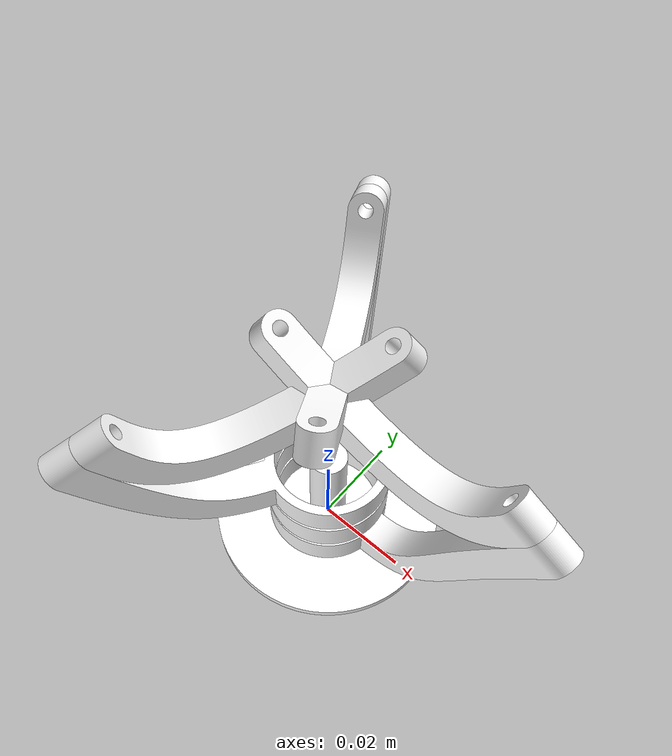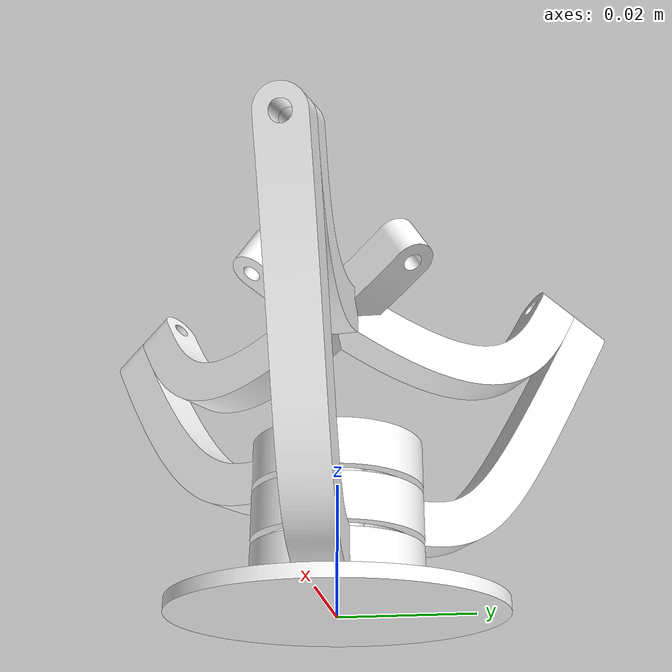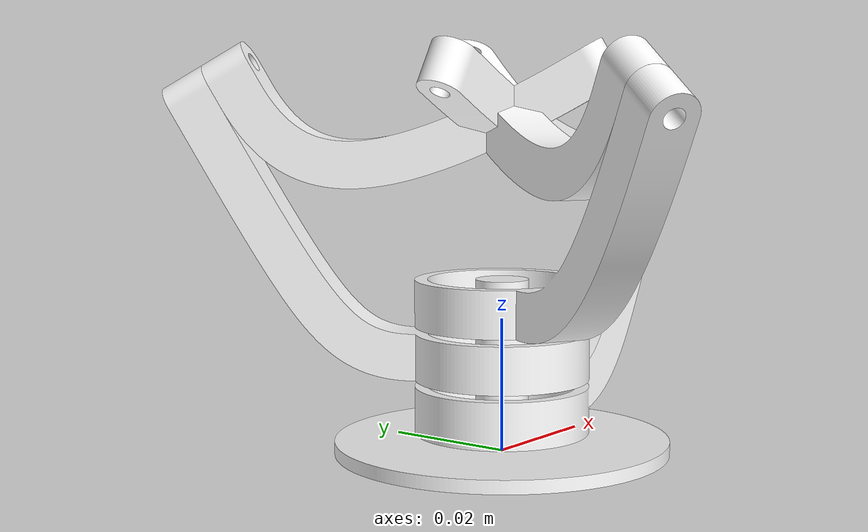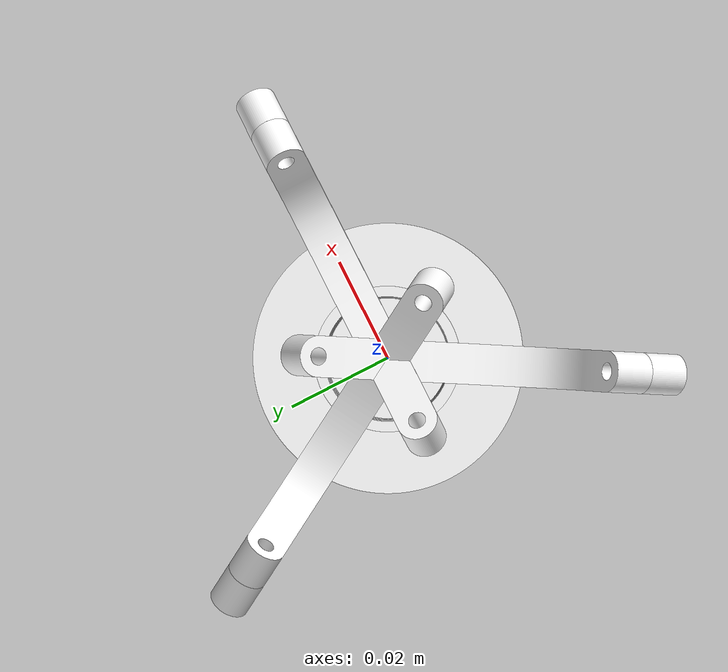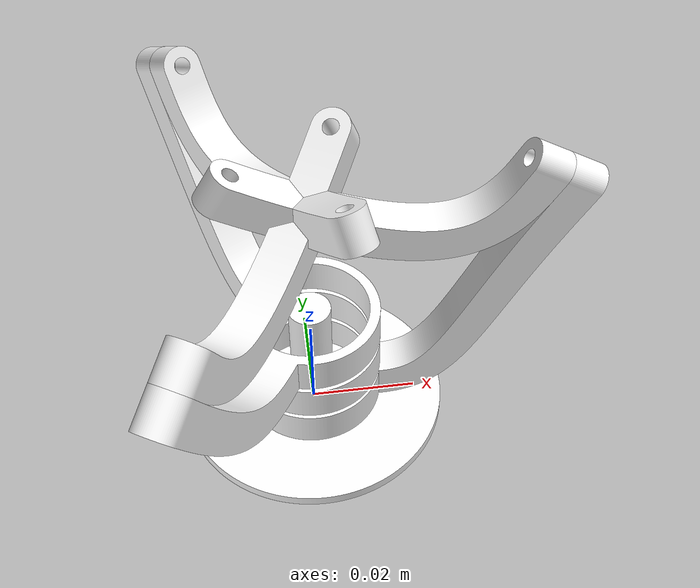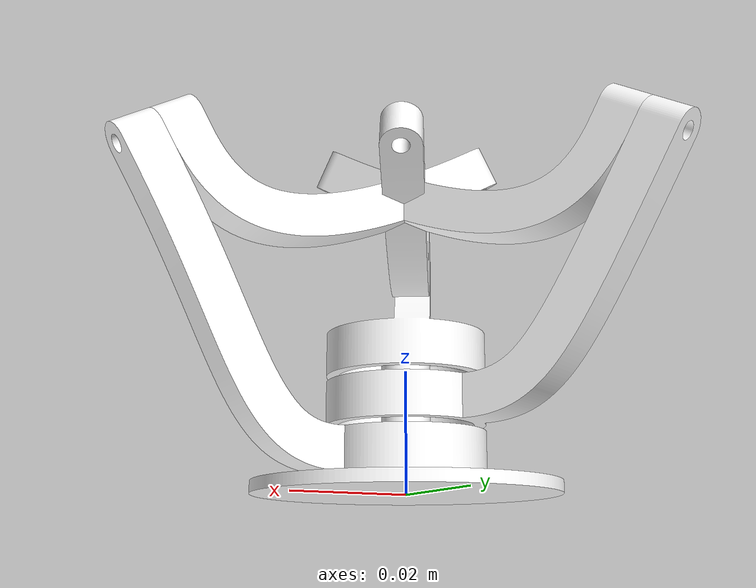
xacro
<?xml version="1.0"?>
<robot xmlns:xacro="http://www.ros.org/wiki/xacro"  name="robot">

    <xacro:include filename="$(find spm_robot)/description/robot_core.xacro" />

	<!-- ROS2_CONTROL -->

	<ros2_control name="SPMSystem" type="system">
		<hardware>
			<plugin>mock_components/GenericSystem</plugin>
		</hardware>
		<joint name="first_arm_joint">
			<command_interface name="position"/>
			<state_interface name="position"/>
			<state_interface name="velocity"/>
		</joint>
		<joint name="second_arm_joint">
			<command_interface name="position"/>
			<state_interface name="position"/>
			<state_interface name="velocity"/>
		</joint>
		<joint name="third_arm_joint">
			<command_interface name="position"/>
			<state_interface name="position"/>
			<state_interface name="velocity"/>
		</joint>
	</ros2_control>

</robot>

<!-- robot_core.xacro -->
<robot xmlns:xacro="http://www.ros.org/wiki/xacro">

	<!-- White -->
	<material name="white">
		<color rgba="1 1 1 1"/>
	</material>

	<!-- Black -->
	<material name="black">
		<color rgba="0 0 0 1"/>
	</material>

	<!-- BASE_LINK -->

	<link name="base_link">
		<visual>
			<geometry>
				<mesh filename="package://spm_robot/description/meshes/SPM_Base.stl"/>
			</geometry>
			<material name="white"/>
		</visual>
		<collision>
			<geometry>
				<mesh filename="package://spm_robot/description/meshes/SPM_Base.stl"/>
			</geometry>
		</collision>
		<inertial>
			<mass value="0.0055"/>
			<inertia ixx="8.83e-7" ixy="0.0" ixz="0.0"
			         iyy="8.83e-7" iyz="0.0"
			         izz="1.317e-6"/>
		</inertial>
	</link>

	<!-- FIRST_ARM -->

	<joint name="first_arm_joint" type="continuous">
		<parent link="base_link"/>
		<child link="first_arm"/>
		<origin xyz="0 0 0.003" rpy="0 0 0"/>
		<axis xyz="0 0 1"/>
	</joint>

	<link name="first_arm">
		<visual>
			<geometry>
				<mesh filename="package://spm_robot/description/meshes/SPM_arm_1.stl"/>
			</geometry>
			<material name="white"/>
		</visual>
		<collision>
			<geometry>
				<mesh filename="package://spm_robot/description/meshes/SPM_arm_1.stl"/>
			</geometry>
		</collision>
		<inertial>
			<mass value="0.004245"/>
			<inertia ixx="1.182e-6" ixy="0.0" ixz="-9.68e-7"
			         iyy="2.266e-6" iyz="0.0"
			         izz="1.265e-6"/>
		</inertial>
	</link>

	<joint name="first_arm_upper_joint" type="continuous">
		<parent link="first_arm"/>
		<child link="first_arm_upper"/>
		<origin xyz="0.0433013 0 0.05150" rpy="0 -1.0472 0"/>
		<axis xyz="0 0 1"/>
	</joint>

	<link name="first_arm_upper">
		<visual>
			<origin rpy="0 0 3.141592"/>
			<geometry>
				<mesh filename="package://spm_robot/description/meshes/SPM_upper_arm.stl"/>
			</geometry>
			<material name="white"/>
		</visual>
		<collision>
			<origin rpy="0 0 3.141592"/>
			<geometry>
				<mesh filename="package://spm_robot/description/meshes/SPM_upper_arm.stl"/>
			</geometry>
		</collision>
		<inertial>
			<mass value="0.00341"/>
			<inertia ixx="8.64e-7" ixy="0.0" ixz="-3.61e-7"
			         iyy="1.098e-6" iyz="0.0"
			         izz="2.62e-7"/>
		</inertial>
	</link>

	<!-- SECOND_ARM -->

	<joint name="second_arm_joint" type="continuous">
		<parent link="base_link"/>
		<child link="second_arm"/>
		<origin xyz="0 0 0.011" rpy="0 0 2.0944"/>
		<axis xyz="0 0 1"/>
	</joint>

	<link name="second_arm">
		<visual>
			<geometry>
				<mesh filename="package://spm_robot/description/meshes/SPM_arm_2.stl"/>
			</geometry>
			<material name="white"/>
		</visual>
		<collision>
			<geometry>
				<mesh filename="package://spm_robot/description/meshes/SPM_arm_2.stl"/>
			</geometry>
		</collision>
		<inertial>
			<mass value="0.003916"/>
			<inertia ixx="7.75e-7" ixy="0.0" ixz="-7.51e-7"
			         iyy="1.835e-6" iyz="0.0"
			         izz="1.239e-6"/>
		</inertial>
	</link>

	<joint name="second_arm_upper_joint" type="continuous">
		<parent link="second_arm"/>
		<child link="second_arm_upper"/>
		<origin xyz="0.0433013 0 0.04350" rpy="0 -1.0472 0"/>
		<axis xyz="0 0 1"/>
	</joint>

	<link name="second_arm_upper">
		<visual>
			<origin rpy="0 0 3.141592"/>
			<geometry>
				<mesh filename="package://spm_robot/description/meshes/SPM_upper_arm.stl"/>
			</geometry>
			<material name="white"/>
		</visual>
		<collision>
			<origin rpy="0 0 3.141592"/>
			<geometry>
				<mesh filename="package://spm_robot/description/meshes/SPM_upper_arm.stl"/>
			</geometry>
		</collision>
		<inertial>
			<mass value="0.00341"/>
			<inertia ixx="8.64e-7" ixy="0.0" ixz="-3.61e-7"
			         iyy="1.098e-6" iyz="0.0"
			         izz="2.62e-7"/>
		</inertial>
	</link>

	<!-- THIRD_ARM -->

	<joint name="third_arm_joint" type="continuous">
		<parent link="base_link"/>
		<child link="third_arm"/>
		<origin xyz="0 0 0.019" rpy="0 0 -2.0944"/>
		<axis xyz="0 0 1"/>
	</joint>

	<link name="third_arm">
		<visual>
			<geometry>
				<mesh filename="package://spm_robot/description/meshes/SPM_arm_3.stl"/>
			</geometry>
			<material name="white"/>
		</visual>
		<collision>
			<geometry>
				<mesh filename="package://spm_robot/description/meshes/SPM_arm_3.stl"/>
			</geometry>
		</collision>
		<inertial>
			<mass value="0.003628"/>
			<inertia ixx="4.78e-7" ixy="0.0" ixz="-5.44e-7"
			         iyy="1.514e-6" iyz="0.0"
			         izz="1.212e-6"/>
		</inertial>
	</link>

	<joint name="third_arm_upper_joint" type="continuous">
		<parent link="third_arm"/>
		<child link="third_arm_upper"/>
		<origin xyz="0.0433013 0 0.03550" rpy="0 -1.0472 0"/>
		<axis xyz="0 0 1"/>
	</joint>

	<link name="third_arm_upper">
		<visual>
			<origin rpy="0 0 3.141592"/>
			<geometry>
				<mesh filename="package://spm_robot/description/meshes/SPM_upper_arm.stl"/>
			</geometry>
			<material name="white"/>
		</visual>
		<collision>
			<origin rpy="0 0 3.141592"/>
			<geometry>
				<mesh filename="package://spm_robot/description/meshes/SPM_upper_arm.stl"/>
			</geometry>
		</collision>
		<inertial>
			<mass value="0.00341"/>
			<inertia ixx="8.64e-7" ixy="0.0" ixz="-3.61e-7"
			         iyy="1.098e-6" iyz="0.0"
			         izz="2.62e-7"/>
		</inertial>
	</link>

	<!-- PLATFORM -->

</robot>
